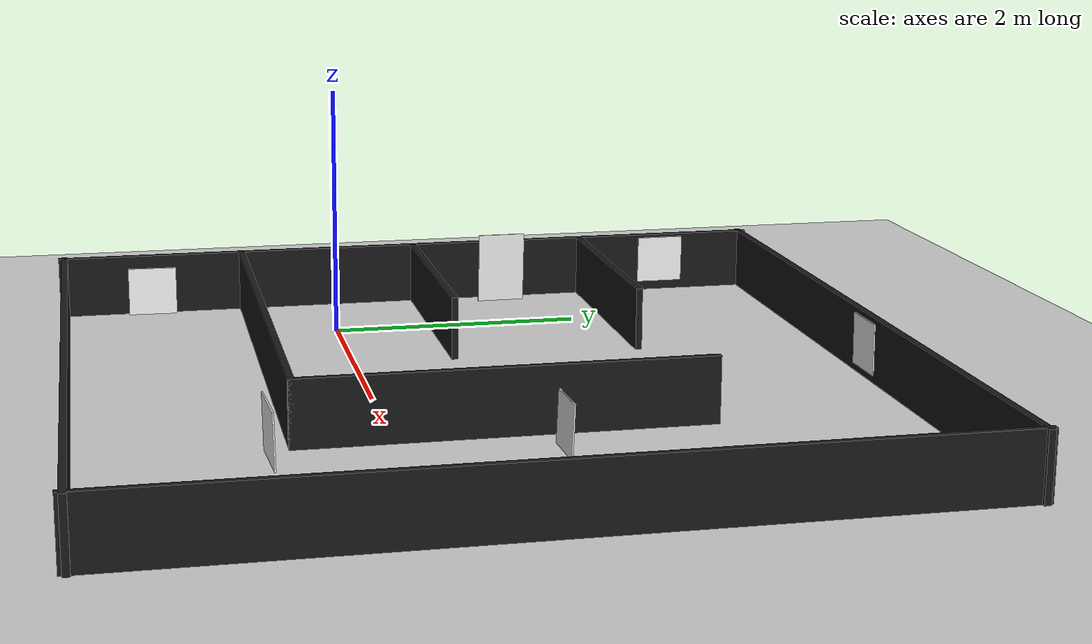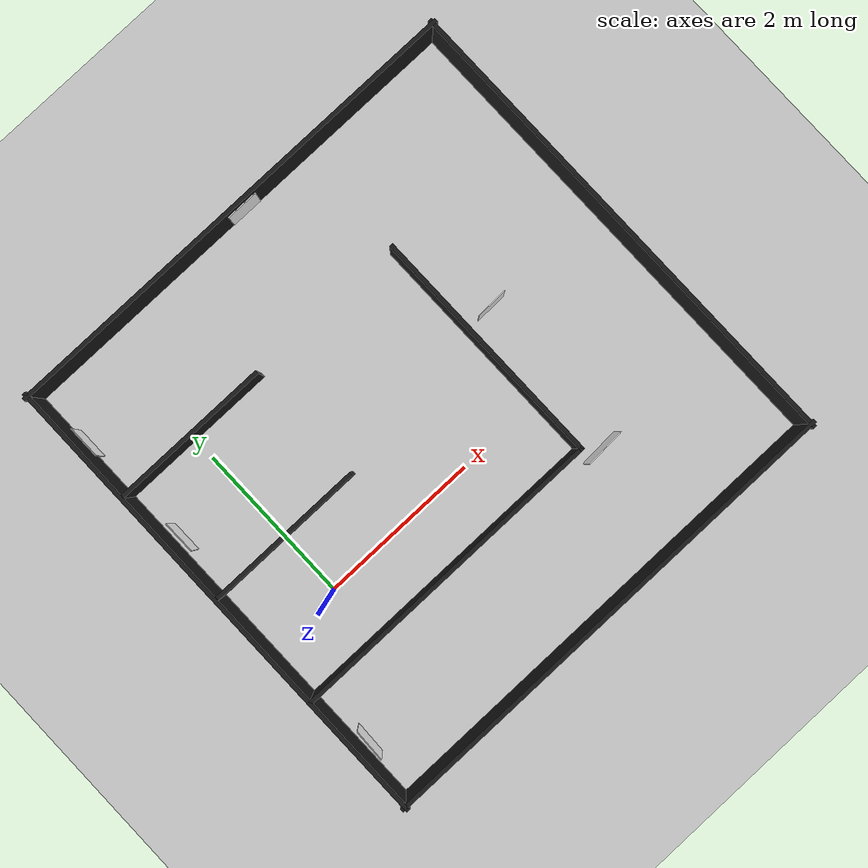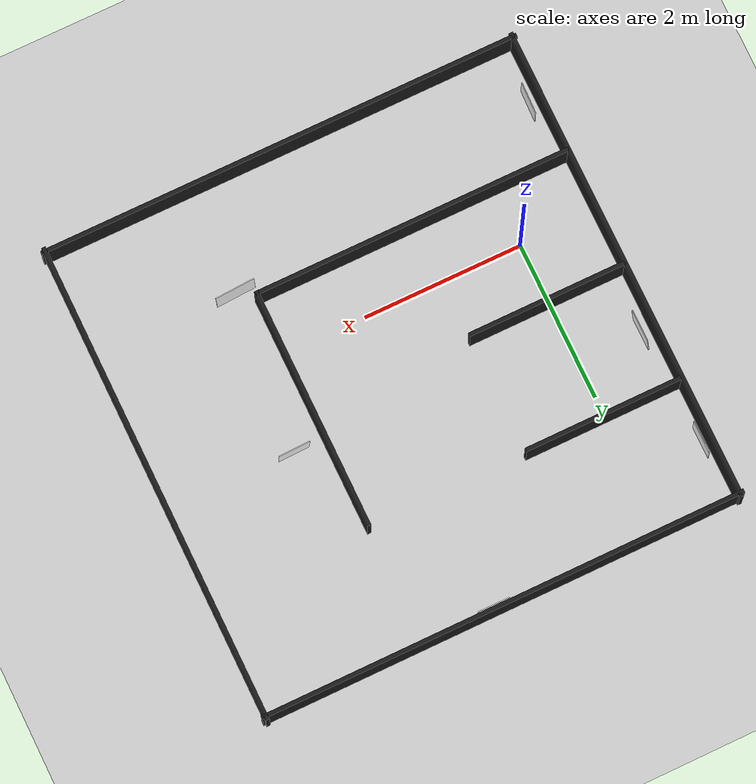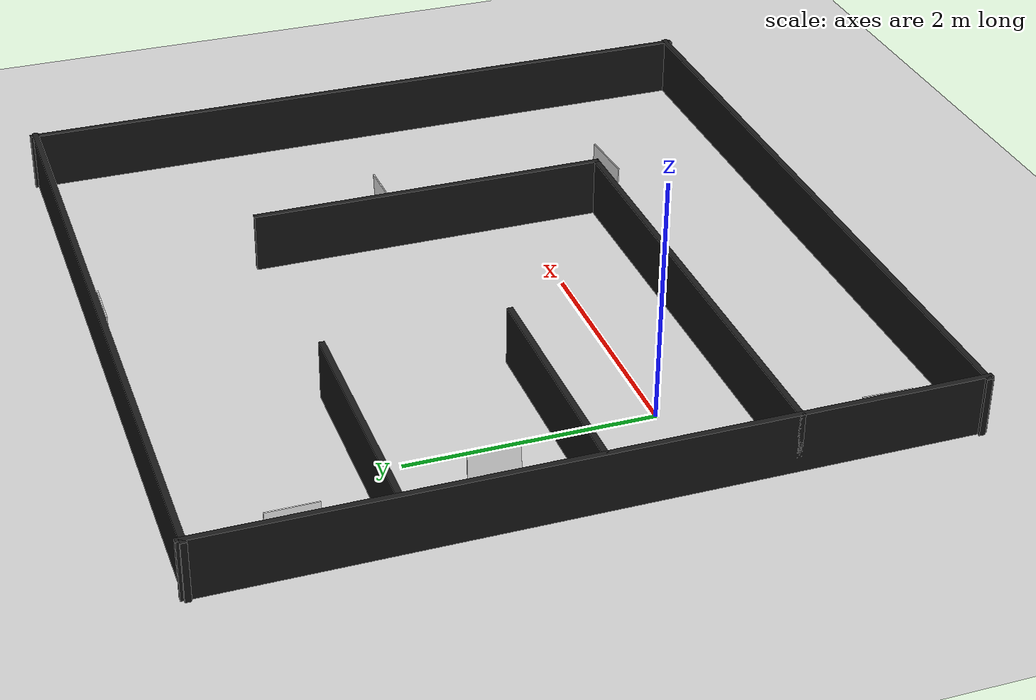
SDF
<sdf version='1.10'>
  <world name='warehouse'>
    <!-- 1. Physics & Systems -->
    <physics name='1ms' type='ignored'>
      <max_step_size>0.001</max_step_size>
      <real_time_factor>1</real_time_factor>
      <real_time_update_rate>1000</real_time_update_rate>
    </physics>

    <plugin name='gz::sim::systems::Physics' filename='gz-sim-physics-system'/>
    <plugin name='gz::sim::systems::UserCommands' filename='gz-sim-user-commands-system'/>
    <plugin name='gz::sim::systems::SceneBroadcaster' filename='gz-sim-scene-broadcaster-system'/>
    <plugin name='gz::sim::systems::Sensors' filename='gz-sim-sensors-system'>
      <render_engine>ogre2</render_engine>
    </plugin>

    <gravity>0 0 -9.8</gravity>
    <scene>
      <ambient>0.4 0.4 0.4 1</ambient>
      <background>0.7 0.7 0.7 1</background>
      <shadows>true</shadows>
    </scene>

    <!-- 2. Static Environment -->
    <model name='ground_plane'>
      <static>true</static>
      <link name='link'>
        <collision name='collision'>
          <geometry><plane><normal>0 0 1</normal><size>20 20</size></plane></geometry>
        </collision>
        <visual name='visual'>
          <geometry><plane><normal>0 0 1</normal><size>20 20</size></plane></geometry>
          <material>
            <ambient>0.8 0.8 0.8 1</ambient>
            <diffuse>0.8 0.8 0.8 1</diffuse>
          </material>
        </visual>
      </link>
    </model>

    <!-- Structure with your manual offset -->
    <model name='maze_walls'>
      <static>true</static>
      <pose>2.05 0.8 0 0 0 0</pose>
      <link name='link'>
        <collision name='north'><pose>0 3 0.25 0 0 0</pose><geometry><box><size>6.1 0.05 0.5</size></box></geometry></collision>
        <visual name='v_north'><pose>0 3 0.25 0 0 0</pose><geometry><box><size>6.1 0.05 0.5</size></box></geometry><material><ambient>0.1 0.1 0.1 1</ambient></material></visual>

        <collision name='south'><pose>0 -3 0.25 0 0 0</pose><geometry><box><size>6.1 0.05 0.5</size></box></geometry></collision>
        <visual name='v_south'><pose>0 -3 0.25 0 0 0</pose><geometry><box><size>6.1 0.05 0.5</size></box></geometry><material><ambient>0.1 0.1 0.1 1</ambient></material></visual>

        <collision name='east'><pose>3 0 0.25 0 0 0</pose><geometry><box><size>0.05 6.1 0.5</size></box></geometry></collision>
        <visual name='v_east'><pose>3 0 0.25 0 0 0</pose><geometry><box><size>0.05 6.1 0.5</size></box></geometry><material><ambient>0.1 0.1 0.1 1</ambient></material></visual>

        <collision name='west'><pose>-3 0 0.25 0 0 0</pose><geometry><box><size>0.05 6.1 0.5</size></box></geometry></collision>
        <visual name='v_west'><pose>-3 0 0.25 0 0 0</pose><geometry><box><size>0.05 6.1 0.5</size></box></geometry><material><ambient>0.1 0.1 0.1 1</ambient></material></visual>

        <collision name='inner_1'><pose>-2 1.5 0.25 0 0 0</pose><geometry><box><size>2 0.05 0.5</size></box></geometry></collision>
        <visual name='v_inner_1'><pose>-2 1.5 0.25 0 0 0</pose><geometry><box><size>2 0.05 0.5</size></box></geometry><material><ambient>0.1 0.1 0.1 1</ambient></material></visual>

        <collision name='inner_2'><pose>-2 0 0.25 0 0 0</pose><geometry><box><size>2 0.05 0.5</size></box></geometry></collision>
        <visual name='v_inner_2'><pose>-2 0 0.25 0 0 0</pose><geometry><box><size>2 0.05 0.5</size></box></geometry><material><ambient>0.1 0.1 0.1 1</ambient></material></visual>

        <collision name='l_shape_horiz'><pose>-1 -1.5 0.25 0 0 0</pose><geometry><box><size>4.05 0.05 0.5</size></box></geometry></collision>
        <visual name='v_l_shape_horiz'><pose>-1 -1.5 0.25 0 0 0</pose><geometry><box><size>4.05 0.05 0.5</size></box></geometry><material><ambient>0.1 0.1 0.1 1</ambient></material></visual>

        <collision name='l_shape_vert'><pose>1 0 0.25 0 0 0</pose><geometry><box><size>0.05 3.05 0.5</size></box></geometry></collision>
        <visual name='v_l_shape_vert'><pose>1 0 0.25 0 0 0</pose><geometry><box><size>0.05 3.05 0.5</size></box></geometry><material><ambient>0.1 0.1 0.1 1</ambient></material></visual>
      </link>
    </model>

    <!-- 3. Textured Signs with your manual poses -->
    <model name='sign_stop'>
      <static>true</static>
      <pose>2.162 3.757 0.266 -2.448 -1.560 -2.268</pose>
      <link name='link'>
        <visual name='visual'>
          <geometry><box><size>0.4 0.4 0.01</size></box></geometry>
          <material>
            <diffuse>1 1 1 1</diffuse>
            <pbr><metal>
              <albedo_map>model://yahboomcar_description/media/textures/STOP_SIGN.png</albedo_map>
              <emissive_map>model://yahboomcar_description/media/textures/STOP_SIGN.png</emissive_map>
            </metal></pbr>
          </material>
        </visual>
      </link>
    </model>

    <model name='sign_no_entry'>
      <static>true</static>
      <pose>-0.846 3.023 0.292 3.142 1.529 3.142</pose>
      <link name='link'>
        <visual name='visual'>
          <geometry><box><size>0.4 0.4 0.01</size></box></geometry>
          <material>
            <diffuse>1 1 1 1</diffuse>
            <pbr><metal>
              <albedo_map>model://yahboomcar_description/media/textures/NO_ENTRY_SIGN.png</albedo_map>
              <emissive_map>model://yahboomcar_description/media/textures/NO_ENTRY_SIGN.png</emissive_map>
            </metal></pbr>
          </material>
        </visual>
      </link>
    </model>

    <model name='sign_caution'>
      <static>true</static>
      <pose>-0.784 1.558 0.294 3.142 -1.489 0.007</pose>
      <link name='link'>
        <visual name='visual'>
          <geometry><box><size>0.6 0.4 0.01</size></box></geometry>
          <material>
            <diffuse>1 1 1 1</diffuse>
            <pbr><metal>
              <albedo_map>model://yahboomcar_description/media/textures/CAUTION_SIGN.png</albedo_map>
              <emissive_map>model://yahboomcar_description/media/textures/CAUTION_SIGN.png</emissive_map>
            </metal></pbr>
          </material>
        </visual>
      </link>
    </model>

    <model name='sign_parking'>
      <static>true</static>
      <pose>-0.811 -1.474 0.217 -3.112 -1.558 -0.064</pose>
      <link name='link'>
        <visual name='visual'>
          <geometry><box><size>0.4 0.4 0.01</size></box></geometry>
          <material>
            <diffuse>1 1 1 1</diffuse>
            <pbr><metal>
              <albedo_map>model://yahboomcar_description/media/textures/PARKING_SIGN.png</albedo_map>
              <emissive_map>model://yahboomcar_description/media/textures/PARKING_SIGN.png</emissive_map>
            </metal></pbr>
          </material>
        </visual>
      </link>
    </model>

    <model name='sign_pedestrian'>
      <static>true</static>
      <pose>3.434 1.113 0.180 3.142 -1.529 1.600</pose>
      <link name='link'>
        <visual name='visual'>
          <geometry><box><size>0.4 0.4 0.01</size></box></geometry>
          <material>
            <diffuse>1 1 1 1</diffuse>
            <pbr><metal>
              <albedo_map>model://yahboomcar_description/media/textures/PEDESTRIAN_SIGN.png</albedo_map>
              <emissive_map>model://yahboomcar_description/media/textures/PEDESTRIAN_SIGN.png</emissive_map>
            </metal></pbr>
          </material>
        </visual>
      </link>
    </model>

    <model name='sign_agv_operating'>
      <static>true</static>
      <pose>3.250 -0.874 0.157 -2.736 1.549 2.028</pose>
      <link name='link'>
        <visual name='visual'>
          <geometry><box><size>0.5 0.5 0.01</size></box></geometry>
          <material>
            <diffuse>1 1 1 1</diffuse>
            <pbr><metal>
              <albedo_map>model://yahboomcar_description/media/textures/AGV_OPERATING_SIGN.png</albedo_map>
              <emissive_map>model://yahboomcar_description/media/textures/AGV_OPERATING_SIGN.png</emissive_map>
            </metal></pbr>
          </material>
        </visual>
      </link>
    </model>

    <!-- 4. Global Lighting -->
    <light name='sun' type='directional'>
      <pose>0 0 10 0 0 0</pose>
      <cast_shadows>true</cast_shadows>
      <direction>-0.5 0.1 -0.9</direction>
      <diffuse>0.8 0.8 0.8 1</diffuse>
      <specular>0.2 0.2 0.2 1</specular>
    </light>
  </world>
</sdf>
